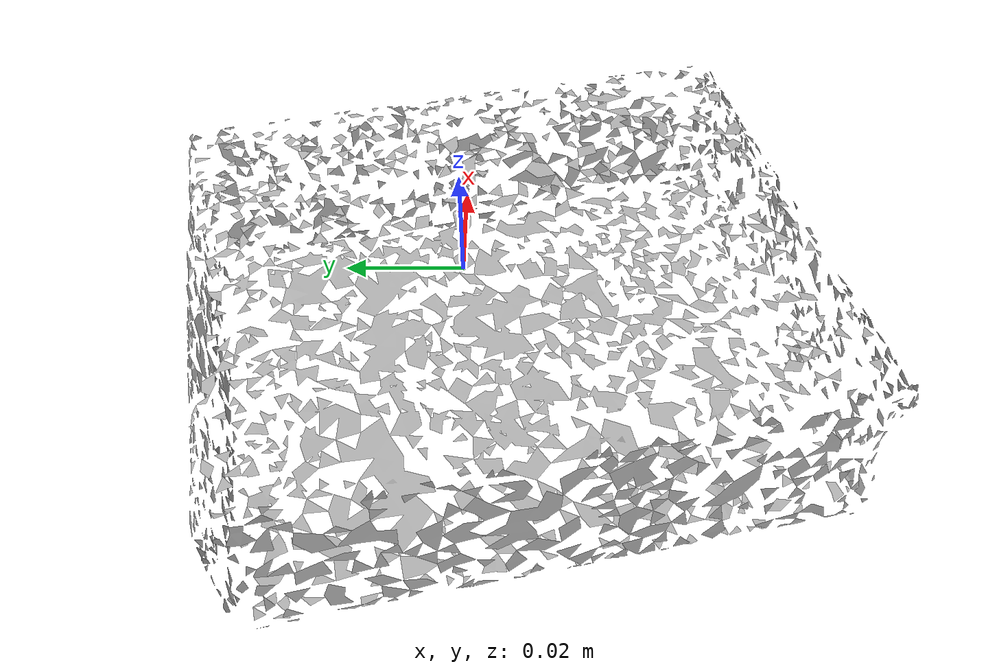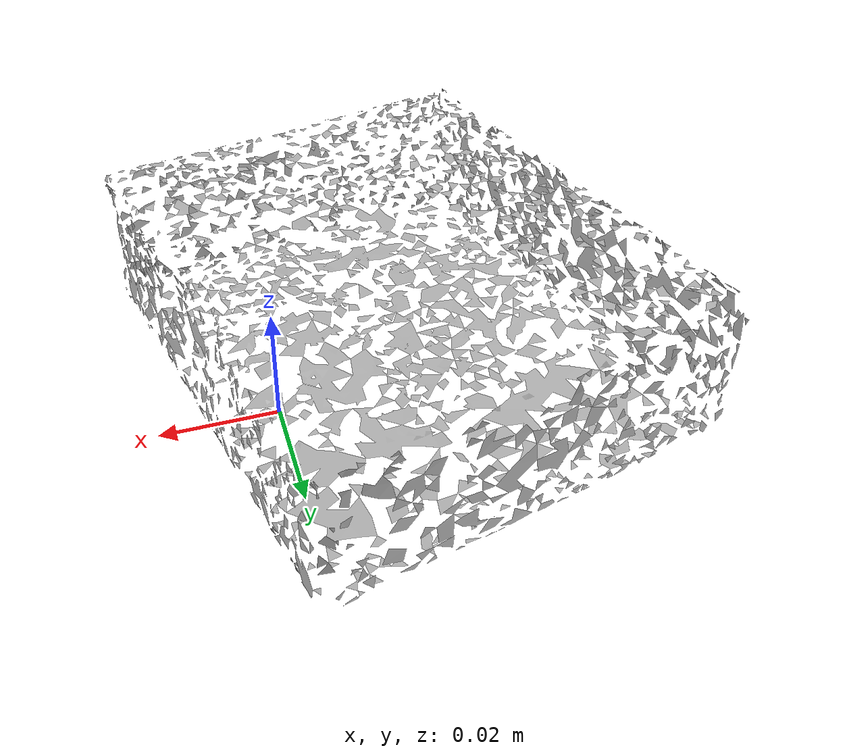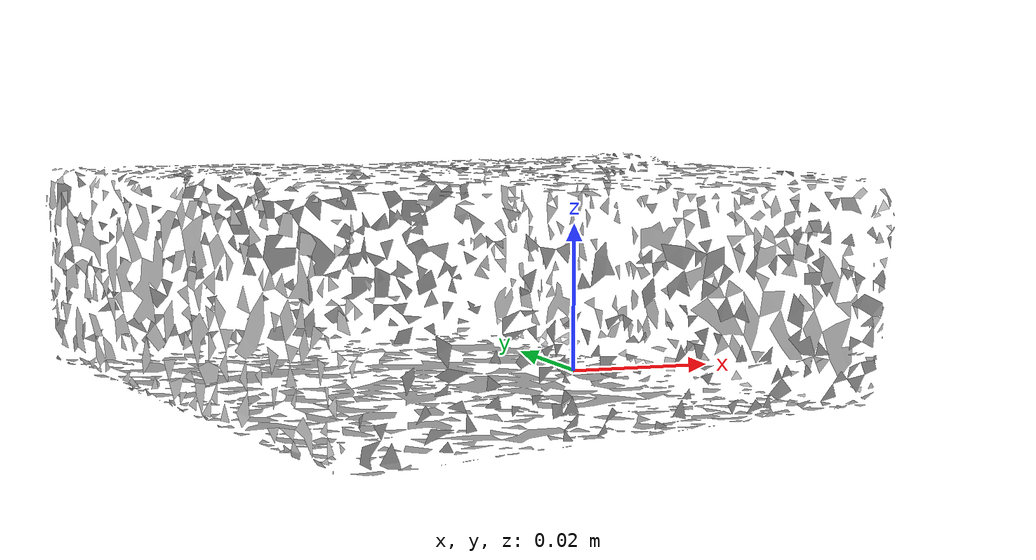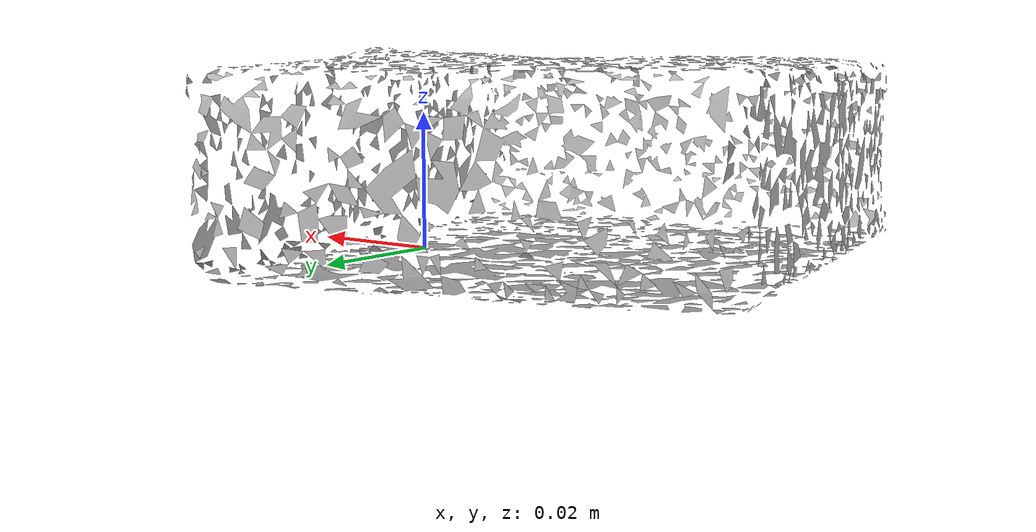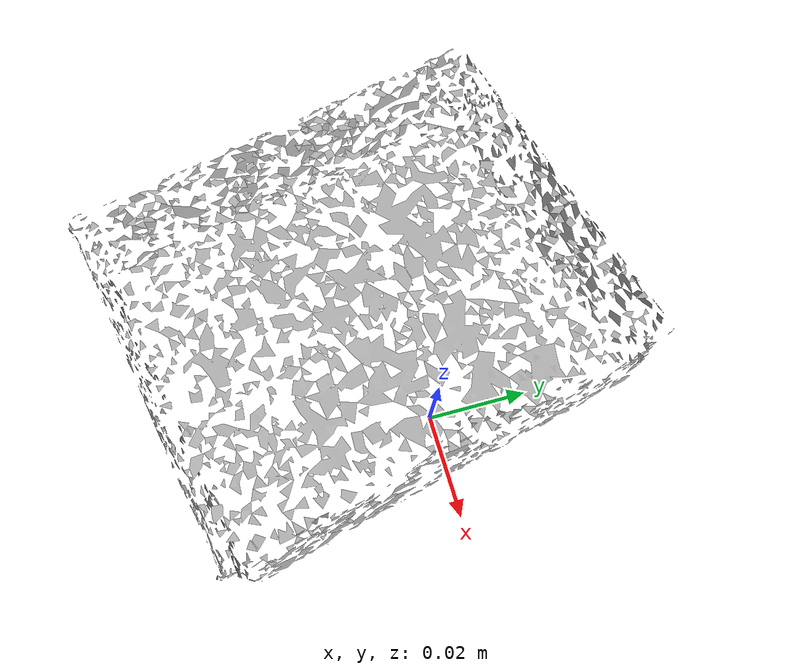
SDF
<?xml version='1.0'?>
<sdf version="1.6">
  <model name="gelatin_box">
    <static>false</static>
    <link name="link">
      <inertial>
        <pose>-0.01267551794293906 -0.005860203252540228 0.007877966045089096 -0.38129622835955573 -1.5653302217381688 -0.9614836103308723</pose>
        <mass>0.0001730558194301085</mass>
        <inertia>
          <ixx>1.808808464126736e-07</ixx>
          <ixy>-1.977250977406005e-25</ixy>
          <ixz>1.378083553350472e-24</ixz>
          <iyy>1.1880213011661254e-07</iyy>
          <iyz>1.4284326317117856e-23</iyz>
          <izz>8.422039755656733e-08</izz>
        </inertia>
      </inertial>
      <collision name="collision">
        <geometry>
          <mesh>
            <!-- Use a downsampled mesh for collisions -->
            <uri>model://009_gelatin_box/downsampled.obj</uri>
	        </mesh>
        </geometry>
        <surface>
      </surface>
      </collision>
      <visual name="visual">
        <geometry>
          <mesh>
            <uri>model://009_gelatin_box/google_16k/textured.obj</uri>
	        </mesh>
        </geometry>
        <material>
          <script>
            <uri>model://009_gelatin_box/gelatin_box.material</uri>
            <name>gelatin_box</name>
          </script>
        </material>
      </visual>
    </link>
  </model>
</sdf>
